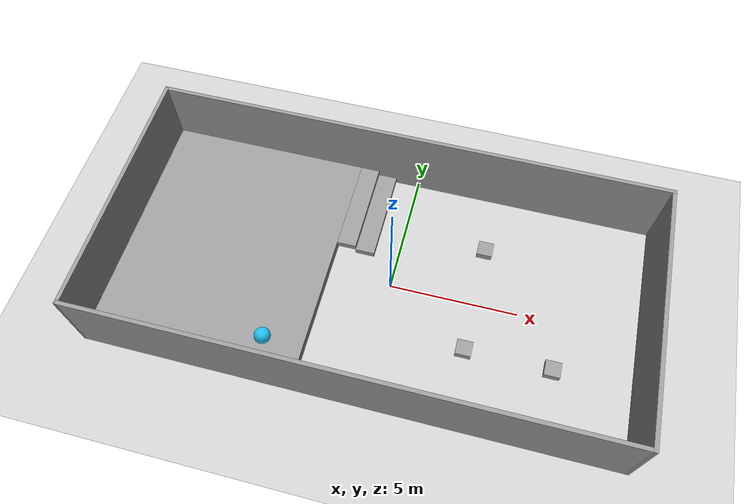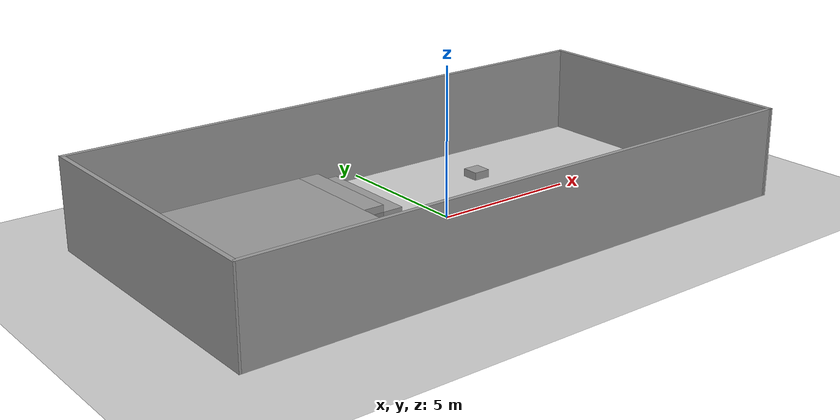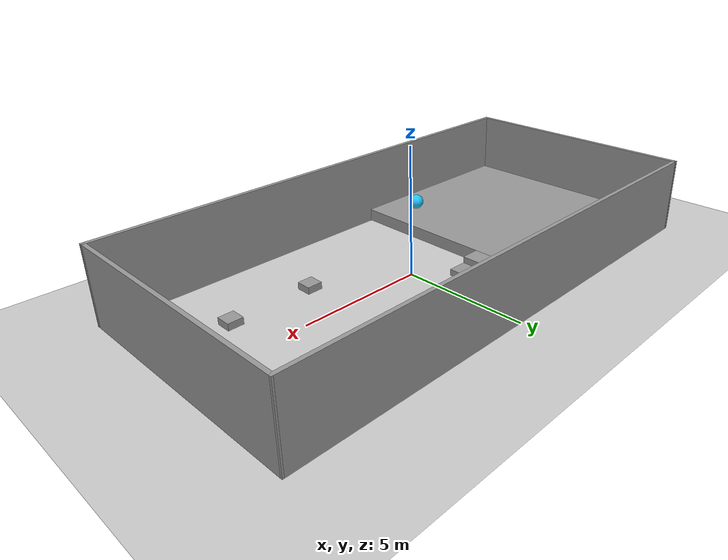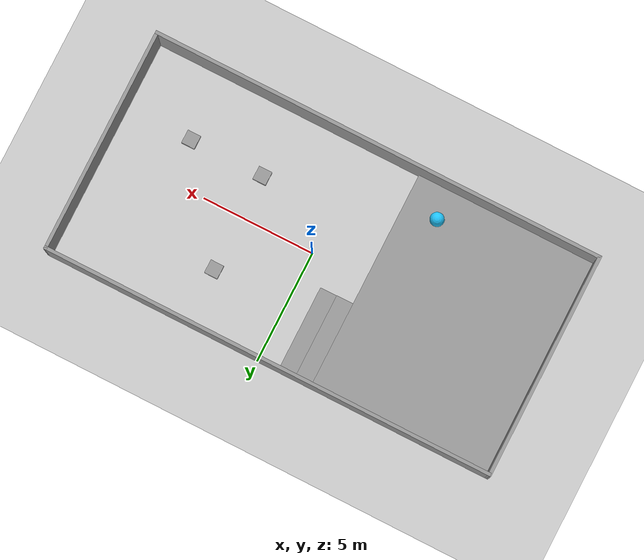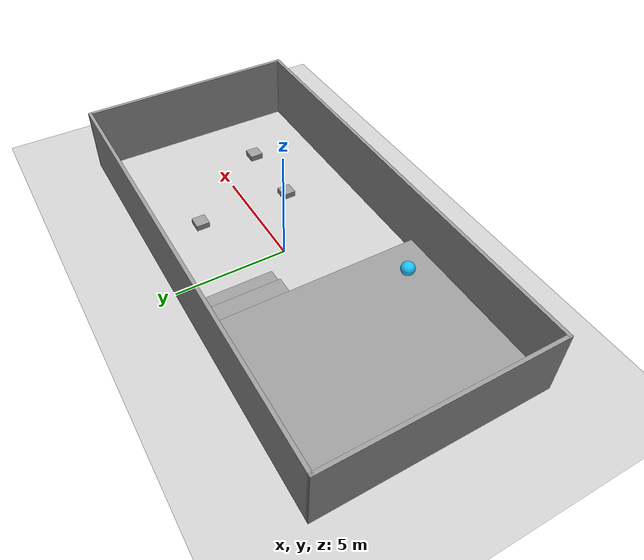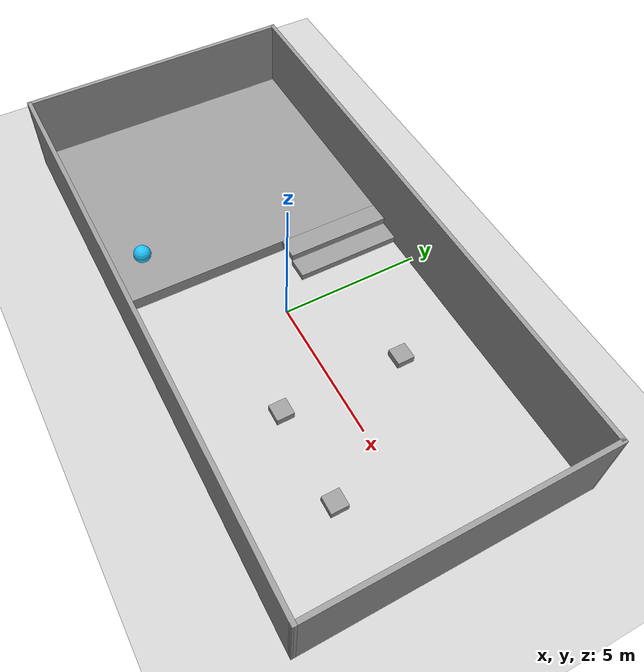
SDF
<sdf version="1.7">
 <world name="default">
  <light name="sun" type="directional">
   <pose>0 0 10 0 -0 0</pose>
   <diffuse>0.8 0.8 0.8 1</diffuse>
   <specular>0.2 0.2 0.2 1</specular>
   <attenuation>
    <range>1000</range>
    <constant>0.9</constant>
    <linear>0.01</linear>
    <quadratic>0.001</quadratic>
   </attenuation>
   <direction>-0.5 0.1 -0.9</direction>
   <spot><inner_angle>0</inner_angle><outer_angle>0</outer_angle><falloff>0</falloff></spot>
  </light>
  <model name="ground_plane">
   <static>1</static>
   <link name="link">
    <collision name="collision">
     <geometry><plane><normal>0 0 1</normal><size>20 10</size></plane></geometry>
     <surface>
      <contact><collide_bitmask>65535</collide_bitmask></contact>
      <friction><ode><mu>100</mu><mu2>50</mu2></ode></friction>
     </surface>
    </collision>
    <visual name="visual">
     <cast_shadows>0</cast_shadows>
     <geometry><plane><normal>0 0 1</normal><size>19 10</size></plane></geometry>
     <material>
      <script><uri>file://media/materials/scripts/gazebo.material</uri><name>Gazebo/Tertiary</name></script>
     </material>
    </visual>
   </link>
  </model>
  <gravity>0 0 -9.8</gravity>
  <magnetic_field>6e-06 2.3e-05 -4.2e-05</magnetic_field>
  <atmosphere type="adiabatic"/>
  <physics type="ode">
   <max_step_size>0.001</max_step_size>
   <real_time_factor>1</real_time_factor>
   <real_time_update_rate>1000</real_time_update_rate>
  </physics>
  <scene><ambient>0.4 0.4 0.4 1</ambient><background>0.7 0.7 0.7 1</background><shadows>1</shadows></scene>
  <spherical_coordinates>
   <surface_model>EARTH_WGS84</surface_model>
   <latitude_deg>0</latitude_deg>
   <longitude_deg>0</longitude_deg>
   <elevation>0</elevation>
   <heading_deg>0</heading_deg>
  </spherical_coordinates>
  <model name="trainenv_0">
   <pose>3 -0 0 0 -0 0</pose>
   <link name="Wall_10">
    <collision name="Wall_10_Collision">
     <geometry><box><size>20.2362 0.15 3.5</size></box></geometry>
     <pose>0 0 1.25 0 -0 0</pose>
    </collision>
    <visual name="Wall_10_Visual">
     <pose>0 0 1.25 0 -0 0</pose>
     <geometry><box><size>20.2362 0.15 3.5</size></box></geometry>
     <material>
      <script><uri>file://media/materials/scripts/gazebo.material</uri><name>Gazebo/Grey</name></script>
      <ambient>1 1 1 1</ambient>
     </material>
     <meta><layer>0</layer></meta>
    </visual>
    <pose>-3.4712 4.925 0 0 -0 -4.8e-05</pose>
   </link>
   <link name="Wall_11">
    <collision name="Wall_11_Collision">
     <geometry><box><size>10 0.15 3.5</size></box></geometry>
     <pose>0 0 1.25 0 -0 0</pose>
    </collision>
    <visual name="Wall_11_Visual">
     <pose>0 0 1.25 0 -0 0</pose>
     <geometry><box><size>10 0.15 3.5</size></box></geometry>
     <material>
      <script><uri>file://media/materials/scripts/gazebo.material</uri><name>Gazebo/Grey</name></script>
      <ambient>1 1 1 1</ambient>
     </material>
     <meta><layer>0</layer></meta>
    </visual>
    <pose>6.58089 -0.000491 0 0 -0 -1.56897</pose>
   </link>
   <link name="Wall_13">
    <collision name="Wall_13_Collision">
     <geometry><box><size>20.2359 0.15 3.5</size></box></geometry>
     <pose>0 0 1.25 0 -0 0</pose>
    </collision>
    <visual name="Wall_13_Visual">
     <pose>0 0 1.25 0 -0 0</pose>
     <geometry><box><size>20.2359 0.15 3.5</size></box></geometry>
     <material>
      <script><uri>file://media/materials/scripts/gazebo.material</uri><name>Gazebo/Grey</name></script>
      <ambient>1 1 1 1</ambient>
     </material>
     <meta><layer>0</layer></meta>
    </visual>
    <pose>-3.45303 -4.925 0 0 -0 -4.9e-05</pose>
   </link>
   <link name="Wall_9">
    <collision name="Wall_9_Collision">
     <geometry><box><size>10 0.15 3.5</size></box></geometry>
     <pose>0 0 1.25 0 -0 0</pose>
    </collision>
    <visual name="Wall_9_Visual">
     <pose>0 0 1.25 0 -0 0</pose>
     <geometry><box><size>10 0.15 3.5</size></box></geometry>
     <material>
      <script><uri>file://media/materials/scripts/gazebo.material</uri><name>Gazebo/Grey</name></script>
      <ambient>1 1 1 1</ambient>
     </material>
     <meta><layer>0</layer></meta>
    </visual>
    <pose>-13.5456 0.000489 0 0 -0 1.57266</pose>
   </link>
   <static>1</static>
  </model>
  <model name="floordeck">
   <link name="link_0">
    <pose>1e-06 3e-06 0 0 -0 0</pose>
    <visual name="visual">
     <geometry><box><size>9.8 8 0.5</size></box></geometry>
     <material>
      <lighting>1</lighting>
      <script><uri>file://media/materials/scripts/gazebo.material</uri><name>Gazebo/Grey</name></script>
      <shader type="pixel"/>
     </material>
    </visual>
    <collision name="collision">
     <geometry><box><size>9.8 8 0.5</size></box></geometry>
     <surface><friction><ode><mu>100</mu><mu2>50</mu2></ode></friction></surface>
    </collision>
   </link>
   <static>1</static>
   <pose>-6.45 -0.0084 0.25 0 -0 1.5708</pose>
  </model>
  <model name="roofdeck">
   <link name="link_0">
    <pose>1e-06 3e-06 0 0 -0 0</pose>
    <collision name="collision">
     <geometry><box><size>9.8 20 0.5</size></box></geometry>
     <surface><friction><ode><mu>100</mu><mu2>50</mu2></ode></friction></surface>
    </collision>
   </link>
   <static>1</static>
   <pose>-0.5 0 3.25 0 -0 1.5708</pose>
  </model>
  <model name="tabledeck_0">
   <link name="link_0">
    <pose>1e-06 3e-06 0 0 -0 0</pose>
    <visual name="visual">
     <geometry><box><size>0.6 0.6 0.40</size></box></geometry>
     <material>
      <lighting>1</lighting>
      <script><uri>file://media/materials/scripts/gazebo.material</uri><name>Gazebo/Grey</name></script>
      <shader type="pixel"/>
     </material>
    </visual>
    <collision name="collision">
     <geometry><box><size>0.6 0.6 0.40</size></box></geometry>
     <surface><friction><ode><mu>100</mu><mu2>50</mu2></ode></friction></surface>
    </collision>
   </link>
   <static>1</static>
   <pose>3.287 2.424 0.05 0 -0 1.5708</pose>
  </model>
  <model name="tabledeck_1">
   <link name="link_0">
    <pose>1e-06 3e-06 0 0 -0 0</pose>
    <visual name="visual">
     <geometry><box><size>0.6 0.6 0.40</size></box></geometry>
     <material>
      <lighting>1</lighting>
      <script><uri>file://media/materials/scripts/gazebo.material</uri><name>Gazebo/Grey</name></script>
      <shader type="pixel"/>
     </material>
    </visual>
    <collision name="collision">
     <geometry><box><size>0.6 0.6 0.40</size></box></geometry>
     <surface><friction><ode><mu>100</mu><mu2>50</mu2></ode></friction></surface>
    </collision>
   </link>
   <static>1</static>
   <pose>3.287 -1.925 0.05 0 -0 1.5708</pose>
  </model>
  <model name="tabledeck_2">
   <link name="link_0">
    <pose>1e-06 3e-06 0 0 -0 0</pose>
    <visual name="visual">
     <geometry><box><size>0.6 0.6 0.40</size></box></geometry>
     <material>
      <lighting>1</lighting>
      <script><uri>file://media/materials/scripts/gazebo.material</uri><name>Gazebo/Grey</name></script>
      <shader type="pixel"/>
     </material>
    </visual>
    <collision name="collision">
     <geometry><box><size>0.6 0.6 0.40</size></box></geometry>
     <surface><friction><ode><mu>100</mu><mu2>50</mu2></ode></friction></surface>
    </collision>
   </link>
   <static>1</static>
   <pose>6.587 -1.925 0.05 0 -0 1.5708</pose>
  </model>
  <model name="stair_1">
   <pose>-2.0285 5.6 0 0 -0 0</pose>
   <link name="Stairs_6">
    <visual name="Stairs_6_Visual_0">
     <pose>0.7035 -2.59275 0.125 0 0 -1.5708</pose>
     <geometry><box><size>3.8 0.75 0.25</size></box></geometry>
     <material>
      <script><uri>file://media/materials/scripts/gazebo.material</uri><name>Gazebo/Grey</name></script>
      <ambient>1 1 1 1</ambient>
     </material>
     <meta><layer>0</layer></meta>
    </visual>
    <collision name="Stairs_6_Collision_0">
     <geometry><box><size>3.8 0.75 0.25</size></box></geometry>
     <pose>0.7035 -2.59275 0.125 0 0 -1.5708</pose>
    </collision>
    <visual name="Stairs_6_Visual_1">
     <pose>-0.0465 -2.59275 0.375 0 0 -1.5708</pose>
     <geometry><box><size>3.8 0.75 0.25</size></box></geometry>
     <material>
      <script><uri>file://media/materials/scripts/gazebo.material</uri><name>Gazebo/Grey</name></script>
      <ambient>1 1 1 1</ambient>
     </material>
     <meta><layer>0</layer></meta>
    </visual>
    <collision name="Stairs_6_Collision_1">
     <geometry><box><size>3.8 0.75 0.25</size></box></geometry>
     <pose>-0.0465 -2.59275 0.375 0 0 -1.5708</pose>
    </collision>
   </link>
   <static>1</static>
  </model>
  <model name="aws_robomaker_residential_Ball_01">
   <link name="link">
    <inertial>
     <mass>0.12</mass>
     <inertia>
      <ixx>0.030752</ixx>
      <ixy>0</ixy>
      <ixz>0</ixz>
      <iyy>0.030752</iyy>
      <iyz>0</iyz>
      <izz>0.030752</izz>
     </inertia>
    </inertial>
    <collision name="collision">
     <geometry><sphere><radius>0.31</radius></sphere></geometry>
     <surface>
      <friction><ode><mu>0.85</mu><mu2>0.85</mu2></ode></friction>
      <contact><ode><kd>8500</kd><max_vel>5.1</max_vel></ode></contact>
     </surface>
    </collision>
    <visual name="visual">
     <geometry><sphere><radius>0.31</radius></sphere></geometry>
     <material><diffuse>0.12 0.76 0.97 1</diffuse><ambient>0.03 0.21 0.27 1</ambient></material>
     <meta><layer>1</layer></meta>
    </visual>
   </link>
   <static>1</static>
   <pose>-3.95059 -3.52397 0.8 0 -0 0</pose>
  </model>
 </world>
</sdf>
